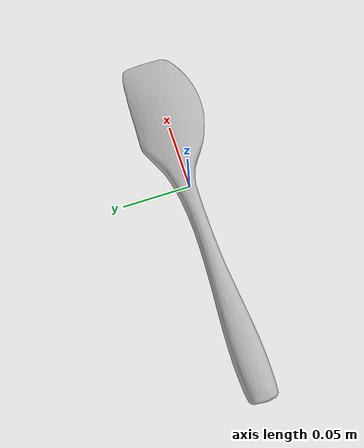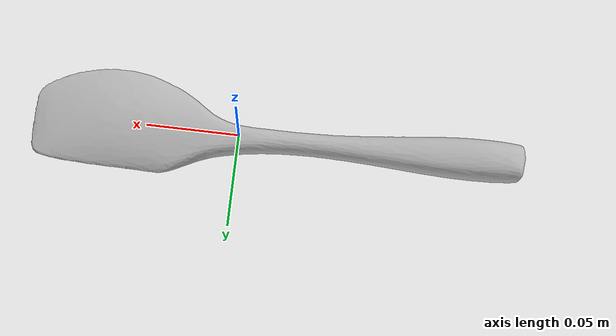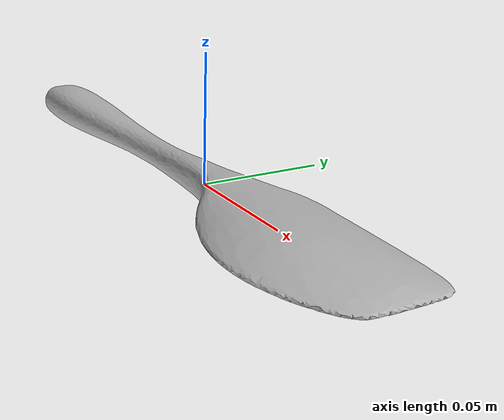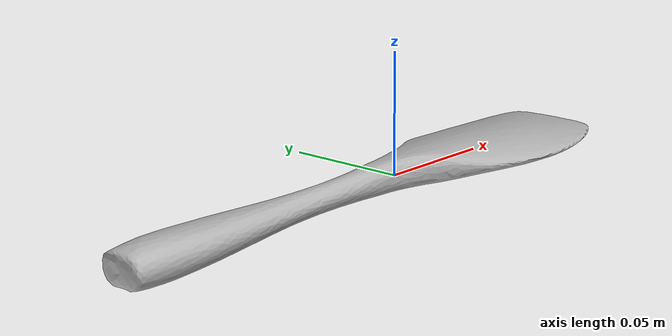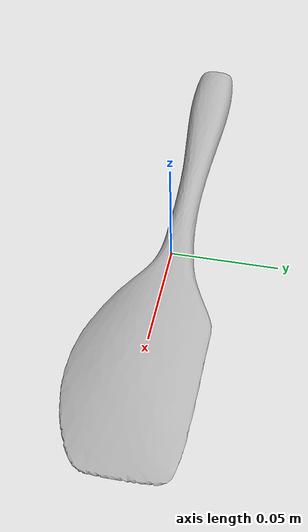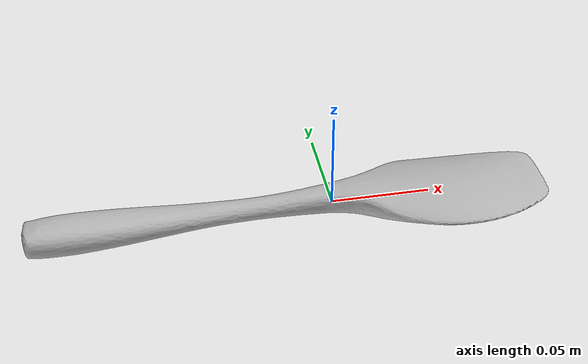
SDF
<?xml version='1.0'?>
<sdf version='1.6'>
	<model name='a_siliconespatula'>
		<static>false</static>
		<pose>0 0 0 0 0 0</pose>

		<link name='link'>
			<inertial>
			<mass>0.122</mass>
			<pose>-0.016557 -0.0017901 -5.52e-05 0 0 0</pose>
				<inertia>
					<ixx>1.004e-06</ixx>
					<ixy>0</ixy>
					<ixz>0</ixz>
					<iyy>3.4e-05</iyy>
					<iyz>0</iyz>
					<izz>3.3851e-05</izz>
				</inertia>
			</inertial>
			<sensor name="tool_contact_sensor" type="contact">
				<always_on>true</always_on>
				<update_rate>30.0</update_rate>
				<contact>
					<collision>collision</collision>
				</contact>
				<plugin name="tool_bumper" filename="libgazebo_ros_bumper.so">
					<bumperTopicName>tool_contact_sensor_state</bumperTopicName>
					<frameName>world</frameName>
				</plugin>
			</sensor>
			<collision name='collision'>
				<geometry>
					<mesh>
						<uri>model://a_siliconespatula/a_siliconespatula.dae</uri>
					</mesh>
				</geometry>
				<surface>
					<friction>
						<ode>
							<mu>0.2</mu>
							<mu2>0.2</mu2>
						</ode>
					</friction>
				</surface>
			</collision>
			<visual name='visual'>
				<geometry>
					<mesh>
						<uri>model://a_siliconespatula/a_siliconespatula.dae</uri>
					</mesh>
				</geometry>
			</visual>
		</link>
	</model>
</sdf>
